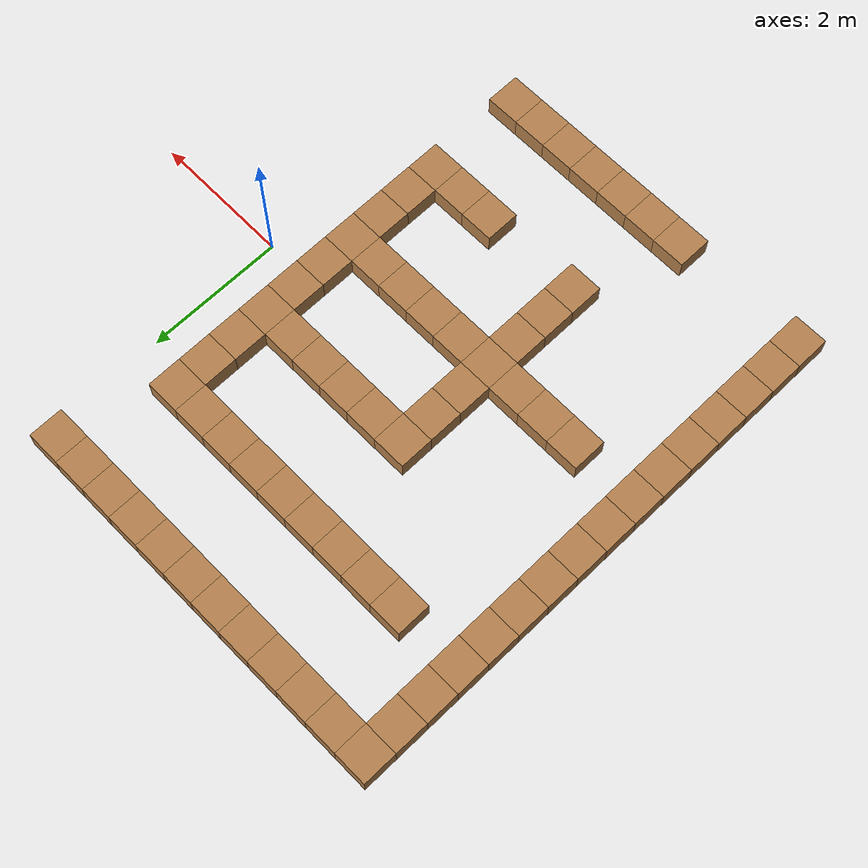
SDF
<sdf version="1.7">
 <world name="default">
  <model name="tile_0_0">
   <pose>-5.75 3.75 0.15 0 0 0</pose>
   <static>true</static>
   <link name="link">
    <collision name="col"><geometry><box><size>0.5 0.5 0.3</size></box></geometry></collision>
    <visual name="vis">
     <geometry><box><size>0.5 0.5 0.3</size></box></geometry>
     <material>
      <ambient>0.30 0.20 0.10 1</ambient>
      <diffuse>0.70 0.50 0.30 1</diffuse>
      <specular>0.10 0.10 0.10 1</specular>
     </material>
    </visual>
   </link>
  </model>
  <model name="tile_0_1">
   <pose>-5.25 3.75 0.15 0 0 0</pose>
   <static>true</static>
   <link name="link">
    <collision name="col"><geometry><box><size>0.5 0.5 0.3</size></box></geometry></collision>
    <visual name="vis">
     <geometry><box><size>0.5 0.5 0.3</size></box></geometry>
     <material>
      <ambient>0.30 0.20 0.10 1</ambient>
      <diffuse>0.70 0.50 0.30 1</diffuse>
      <specular>0.10 0.10 0.10 1</specular>
     </material>
    </visual>
   </link>
  </model>
  <model name="tile_0_2">
   <pose>-4.75 3.75 0.15 0 0 0</pose>
   <static>true</static>
   <link name="link">
    <collision name="col"><geometry><box><size>0.5 0.5 0.3</size></box></geometry></collision>
    <visual name="vis">
     <geometry><box><size>0.5 0.5 0.3</size></box></geometry>
     <material>
      <ambient>0.30 0.20 0.10 1</ambient>
      <diffuse>0.70 0.50 0.30 1</diffuse>
      <specular>0.10 0.10 0.10 1</specular>
     </material>
    </visual>
   </link>
  </model>
  <model name="tile_0_3">
   <pose>-4.25 3.75 0.15 0 0 0</pose>
   <static>true</static>
   <link name="link">
    <collision name="col"><geometry><box><size>0.5 0.5 0.3</size></box></geometry></collision>
    <visual name="vis">
     <geometry><box><size>0.5 0.5 0.3</size></box></geometry>
     <material>
      <ambient>0.30 0.20 0.10 1</ambient>
      <diffuse>0.70 0.50 0.30 1</diffuse>
      <specular>0.10 0.10 0.10 1</specular>
     </material>
    </visual>
   </link>
  </model>
  <model name="tile_0_4">
   <pose>-3.75 3.75 0.15 0 0 0</pose>
   <static>true</static>
   <link name="link">
    <collision name="col"><geometry><box><size>0.5 0.5 0.3</size></box></geometry></collision>
    <visual name="vis">
     <geometry><box><size>0.5 0.5 0.3</size></box></geometry>
     <material>
      <ambient>0.30 0.20 0.10 1</ambient>
      <diffuse>0.70 0.50 0.30 1</diffuse>
      <specular>0.10 0.10 0.10 1</specular>
     </material>
    </visual>
   </link>
  </model>
  <model name="tile_0_5">
   <pose>-3.25 3.75 0.15 0 0 0</pose>
   <static>true</static>
   <link name="link">
    <collision name="col"><geometry><box><size>0.5 0.5 0.3</size></box></geometry></collision>
    <visual name="vis">
     <geometry><box><size>0.5 0.5 0.3</size></box></geometry>
     <material>
      <ambient>0.30 0.20 0.10 1</ambient>
      <diffuse>0.70 0.50 0.30 1</diffuse>
      <specular>0.10 0.10 0.10 1</specular>
     </material>
    </visual>
   </link>
  </model>
  <model name="tile_0_6">
   <pose>-2.75 3.75 0.15 0 0 0</pose>
   <static>true</static>
   <link name="link">
    <collision name="col"><geometry><box><size>0.5 0.5 0.3</size></box></geometry></collision>
    <visual name="vis">
     <geometry><box><size>0.5 0.5 0.3</size></box></geometry>
     <material>
      <ambient>0.30 0.20 0.10 1</ambient>
      <diffuse>0.70 0.50 0.30 1</diffuse>
      <specular>0.10 0.10 0.10 1</specular>
     </material>
    </visual>
   </link>
  </model>
  <model name="tile_0_7">
   <pose>-2.25 3.75 0.15 0 0 0</pose>
   <static>true</static>
   <link name="link">
    <collision name="col"><geometry><box><size>0.5 0.5 0.3</size></box></geometry></collision>
    <visual name="vis">
     <geometry><box><size>0.5 0.5 0.3</size></box></geometry>
     <material>
      <ambient>0.30 0.20 0.10 1</ambient>
      <diffuse>0.70 0.50 0.30 1</diffuse>
      <specular>0.10 0.10 0.10 1</specular>
     </material>
    </visual>
   </link>
  </model>
  <model name="tile_0_8">
   <pose>-1.75 3.75 0.15 0 0 0</pose>
   <static>true</static>
   <link name="link">
    <collision name="col"><geometry><box><size>0.5 0.5 0.3</size></box></geometry></collision>
    <visual name="vis">
     <geometry><box><size>0.5 0.5 0.3</size></box></geometry>
     <material>
      <ambient>0.30 0.20 0.10 1</ambient>
      <diffuse>0.70 0.50 0.30 1</diffuse>
      <specular>0.10 0.10 0.10 1</specular>
     </material>
    </visual>
   </link>
  </model>
  <model name="tile_0_9">
   <pose>-1.25 3.75 0.15 0 0 0</pose>
   <static>true</static>
   <link name="link">
    <collision name="col"><geometry><box><size>0.5 0.5 0.3</size></box></geometry></collision>
    <visual name="vis">
     <geometry><box><size>0.5 0.5 0.3</size></box></geometry>
     <material>
      <ambient>0.30 0.20 0.10 1</ambient>
      <diffuse>0.70 0.50 0.30 1</diffuse>
      <specular>0.10 0.10 0.10 1</specular>
     </material>
    </visual>
   </link>
  </model>
  <model name="tile_0_10">
   <pose>-0.75 3.75 0.15 0 0 0</pose>
   <static>true</static>
   <link name="link">
    <collision name="col"><geometry><box><size>0.5 0.5 0.3</size></box></geometry></collision>
    <visual name="vis">
     <geometry><box><size>0.5 0.5 0.3</size></box></geometry>
     <material>
      <ambient>0.30 0.20 0.10 1</ambient>
      <diffuse>0.70 0.50 0.30 1</diffuse>
      <specular>0.10 0.10 0.10 1</specular>
     </material>
    </visual>
   </link>
  </model>
  <model name="tile_0_11">
   <pose>-0.25 3.75 0.15 0 0 0</pose>
   <static>true</static>
   <link name="link">
    <collision name="col"><geometry><box><size>0.5 0.5 0.3</size></box></geometry></collision>
    <visual name="vis">
     <geometry><box><size>0.5 0.5 0.3</size></box></geometry>
     <material>
      <ambient>0.30 0.20 0.10 1</ambient>
      <diffuse>0.70 0.50 0.30 1</diffuse>
      <specular>0.10 0.10 0.10 1</specular>
     </material>
    </visual>
   </link>
  </model>
  <model name="tile_1_0">
   <pose>-5.75 3.25 0.15 0 0 0</pose>
   <static>true</static>
   <link name="link">
    <collision name="col"><geometry><box><size>0.5 0.5 0.3</size></box></geometry></collision>
    <visual name="vis">
     <geometry><box><size>0.5 0.5 0.3</size></box></geometry>
     <material>
      <ambient>0.30 0.20 0.10 1</ambient>
      <diffuse>0.70 0.50 0.30 1</diffuse>
      <specular>0.10 0.10 0.10 1</specular>
     </material>
    </visual>
   </link>
  </model>
  <model name="tile_2_0">
   <pose>-5.75 2.75 0.15 0 0 0</pose>
   <static>true</static>
   <link name="link">
    <collision name="col"><geometry><box><size>0.5 0.5 0.3</size></box></geometry></collision>
    <visual name="vis">
     <geometry><box><size>0.5 0.5 0.3</size></box></geometry>
     <material>
      <ambient>0.30 0.20 0.10 1</ambient>
      <diffuse>0.70 0.50 0.30 1</diffuse>
      <specular>0.10 0.10 0.10 1</specular>
     </material>
    </visual>
   </link>
  </model>
  <model name="tile_3_0">
   <pose>-5.75 2.25 0.15 0 0 0</pose>
   <static>true</static>
   <link name="link">
    <collision name="col"><geometry><box><size>0.5 0.5 0.3</size></box></geometry></collision>
    <visual name="vis">
     <geometry><box><size>0.5 0.5 0.3</size></box></geometry>
     <material>
      <ambient>0.30 0.20 0.10 1</ambient>
      <diffuse>0.70 0.50 0.30 1</diffuse>
      <specular>0.10 0.10 0.10 1</specular>
     </material>
    </visual>
   </link>
  </model>
  <model name="tile_3_2">
   <pose>-4.75 2.25 0.15 0 0 0</pose>
   <static>true</static>
   <link name="link">
    <collision name="col"><geometry><box><size>0.5 0.5 0.3</size></box></geometry></collision>
    <visual name="vis">
     <geometry><box><size>0.5 0.5 0.3</size></box></geometry>
     <material>
      <ambient>0.30 0.20 0.10 1</ambient>
      <diffuse>0.70 0.50 0.30 1</diffuse>
      <specular>0.10 0.10 0.10 1</specular>
     </material>
    </visual>
   </link>
  </model>
  <model name="tile_3_3">
   <pose>-4.25 2.25 0.15 0 0 0</pose>
   <static>true</static>
   <link name="link">
    <collision name="col"><geometry><box><size>0.5 0.5 0.3</size></box></geometry></collision>
    <visual name="vis">
     <geometry><box><size>0.5 0.5 0.3</size></box></geometry>
     <material>
      <ambient>0.30 0.20 0.10 1</ambient>
      <diffuse>0.70 0.50 0.30 1</diffuse>
      <specular>0.10 0.10 0.10 1</specular>
     </material>
    </visual>
   </link>
  </model>
  <model name="tile_3_4">
   <pose>-3.75 2.25 0.15 0 0 0</pose>
   <static>true</static>
   <link name="link">
    <collision name="col"><geometry><box><size>0.5 0.5 0.3</size></box></geometry></collision>
    <visual name="vis">
     <geometry><box><size>0.5 0.5 0.3</size></box></geometry>
     <material>
      <ambient>0.30 0.20 0.10 1</ambient>
      <diffuse>0.70 0.50 0.30 1</diffuse>
      <specular>0.10 0.10 0.10 1</specular>
     </material>
    </visual>
   </link>
  </model>
  <model name="tile_3_5">
   <pose>-3.25 2.25 0.15 0 0 0</pose>
   <static>true</static>
   <link name="link">
    <collision name="col"><geometry><box><size>0.5 0.5 0.3</size></box></geometry></collision>
    <visual name="vis">
     <geometry><box><size>0.5 0.5 0.3</size></box></geometry>
     <material>
      <ambient>0.30 0.20 0.10 1</ambient>
      <diffuse>0.70 0.50 0.30 1</diffuse>
      <specular>0.10 0.10 0.10 1</specular>
     </material>
    </visual>
   </link>
  </model>
  <model name="tile_3_6">
   <pose>-2.75 2.25 0.15 0 0 0</pose>
   <static>true</static>
   <link name="link">
    <collision name="col"><geometry><box><size>0.5 0.5 0.3</size></box></geometry></collision>
    <visual name="vis">
     <geometry><box><size>0.5 0.5 0.3</size></box></geometry>
     <material>
      <ambient>0.30 0.20 0.10 1</ambient>
      <diffuse>0.70 0.50 0.30 1</diffuse>
      <specular>0.10 0.10 0.10 1</specular>
     </material>
    </visual>
   </link>
  </model>
  <model name="tile_3_7">
   <pose>-2.25 2.25 0.15 0 0 0</pose>
   <static>true</static>
   <link name="link">
    <collision name="col"><geometry><box><size>0.5 0.5 0.3</size></box></geometry></collision>
    <visual name="vis">
     <geometry><box><size>0.5 0.5 0.3</size></box></geometry>
     <material>
      <ambient>0.30 0.20 0.10 1</ambient>
      <diffuse>0.70 0.50 0.30 1</diffuse>
      <specular>0.10 0.10 0.10 1</specular>
     </material>
    </visual>
   </link>
  </model>
  <model name="tile_3_8">
   <pose>-1.75 2.25 0.15 0 0 0</pose>
   <static>true</static>
   <link name="link">
    <collision name="col"><geometry><box><size>0.5 0.5 0.3</size></box></geometry></collision>
    <visual name="vis">
     <geometry><box><size>0.5 0.5 0.3</size></box></geometry>
     <material>
      <ambient>0.30 0.20 0.10 1</ambient>
      <diffuse>0.70 0.50 0.30 1</diffuse>
      <specular>0.10 0.10 0.10 1</specular>
     </material>
    </visual>
   </link>
  </model>
  <model name="tile_3_9">
   <pose>-1.25 2.25 0.15 0 0 0</pose>
   <static>true</static>
   <link name="link">
    <collision name="col"><geometry><box><size>0.5 0.5 0.3</size></box></geometry></collision>
    <visual name="vis">
     <geometry><box><size>0.5 0.5 0.3</size></box></geometry>
     <material>
      <ambient>0.30 0.20 0.10 1</ambient>
      <diffuse>0.70 0.50 0.30 1</diffuse>
      <specular>0.10 0.10 0.10 1</specular>
     </material>
    </visual>
   </link>
  </model>
  <model name="tile_3_10">
   <pose>-0.75 2.25 0.15 0 0 0</pose>
   <static>true</static>
   <link name="link">
    <collision name="col"><geometry><box><size>0.5 0.5 0.3</size></box></geometry></collision>
    <visual name="vis">
     <geometry><box><size>0.5 0.5 0.3</size></box></geometry>
     <material>
      <ambient>0.30 0.20 0.10 1</ambient>
      <diffuse>0.70 0.50 0.30 1</diffuse>
      <specular>0.10 0.10 0.10 1</specular>
     </material>
    </visual>
   </link>
  </model>
  <model name="tile_4_0">
   <pose>-5.75 1.75 0.15 0 0 0</pose>
   <static>true</static>
   <link name="link">
    <collision name="col"><geometry><box><size>0.5 0.5 0.3</size></box></geometry></collision>
    <visual name="vis">
     <geometry><box><size>0.5 0.5 0.3</size></box></geometry>
     <material>
      <ambient>0.30 0.20 0.10 1</ambient>
      <diffuse>0.70 0.50 0.30 1</diffuse>
      <specular>0.10 0.10 0.10 1</specular>
     </material>
    </visual>
   </link>
  </model>
  <model name="tile_4_10">
   <pose>-0.75 1.75 0.15 0 0 0</pose>
   <static>true</static>
   <link name="link">
    <collision name="col"><geometry><box><size>0.5 0.5 0.3</size></box></geometry></collision>
    <visual name="vis">
     <geometry><box><size>0.5 0.5 0.3</size></box></geometry>
     <material>
      <ambient>0.30 0.20 0.10 1</ambient>
      <diffuse>0.70 0.50 0.30 1</diffuse>
      <specular>0.10 0.10 0.10 1</specular>
     </material>
    </visual>
   </link>
  </model>
  <model name="tile_5_0">
   <pose>-5.75 1.25 0.15 0 0 0</pose>
   <static>true</static>
   <link name="link">
    <collision name="col"><geometry><box><size>0.5 0.5 0.3</size></box></geometry></collision>
    <visual name="vis">
     <geometry><box><size>0.5 0.5 0.3</size></box></geometry>
     <material>
      <ambient>0.30 0.20 0.10 1</ambient>
      <diffuse>0.70 0.50 0.30 1</diffuse>
      <specular>0.10 0.10 0.10 1</specular>
     </material>
    </visual>
   </link>
  </model>
  <model name="tile_5_10">
   <pose>-0.75 1.25 0.15 0 0 0</pose>
   <static>true</static>
   <link name="link">
    <collision name="col"><geometry><box><size>0.5 0.5 0.3</size></box></geometry></collision>
    <visual name="vis">
     <geometry><box><size>0.5 0.5 0.3</size></box></geometry>
     <material>
      <ambient>0.30 0.20 0.10 1</ambient>
      <diffuse>0.70 0.50 0.30 1</diffuse>
      <specular>0.10 0.10 0.10 1</specular>
     </material>
    </visual>
   </link>
  </model>
  <model name="tile_6_0">
   <pose>-5.75 0.75 0.15 0 0 0</pose>
   <static>true</static>
   <link name="link">
    <collision name="col"><geometry><box><size>0.5 0.5 0.3</size></box></geometry></collision>
    <visual name="vis">
     <geometry><box><size>0.5 0.5 0.3</size></box></geometry>
     <material>
      <ambient>0.30 0.20 0.10 1</ambient>
      <diffuse>0.70 0.50 0.30 1</diffuse>
      <specular>0.10 0.10 0.10 1</specular>
     </material>
    </visual>
   </link>
  </model>
  <model name="tile_6_5">
   <pose>-3.25 0.75 0.15 0 0 0</pose>
   <static>true</static>
   <link name="link">
    <collision name="col"><geometry><box><size>0.5 0.5 0.3</size></box></geometry></collision>
    <visual name="vis">
     <geometry><box><size>0.5 0.5 0.3</size></box></geometry>
     <material>
      <ambient>0.30 0.20 0.10 1</ambient>
      <diffuse>0.70 0.50 0.30 1</diffuse>
      <specular>0.10 0.10 0.10 1</specular>
     </material>
    </visual>
   </link>
  </model>
  <model name="tile_6_6">
   <pose>-2.75 0.75 0.15 0 0 0</pose>
   <static>true</static>
   <link name="link">
    <collision name="col"><geometry><box><size>0.5 0.5 0.3</size></box></geometry></collision>
    <visual name="vis">
     <geometry><box><size>0.5 0.5 0.3</size></box></geometry>
     <material>
      <ambient>0.30 0.20 0.10 1</ambient>
      <diffuse>0.70 0.50 0.30 1</diffuse>
      <specular>0.10 0.10 0.10 1</specular>
     </material>
    </visual>
   </link>
  </model>
  <model name="tile_6_7">
   <pose>-2.25 0.75 0.15 0 0 0</pose>
   <static>true</static>
   <link name="link">
    <collision name="col"><geometry><box><size>0.5 0.5 0.3</size></box></geometry></collision>
    <visual name="vis">
     <geometry><box><size>0.5 0.5 0.3</size></box></geometry>
     <material>
      <ambient>0.30 0.20 0.10 1</ambient>
      <diffuse>0.70 0.50 0.30 1</diffuse>
      <specular>0.10 0.10 0.10 1</specular>
     </material>
    </visual>
   </link>
  </model>
  <model name="tile_6_8">
   <pose>-1.75 0.75 0.15 0 0 0</pose>
   <static>true</static>
   <link name="link">
    <collision name="col"><geometry><box><size>0.5 0.5 0.3</size></box></geometry></collision>
    <visual name="vis">
     <geometry><box><size>0.5 0.5 0.3</size></box></geometry>
     <material>
      <ambient>0.30 0.20 0.10 1</ambient>
      <diffuse>0.70 0.50 0.30 1</diffuse>
      <specular>0.10 0.10 0.10 1</specular>
     </material>
    </visual>
   </link>
  </model>
  <model name="tile_6_9">
   <pose>-1.25 0.75 0.15 0 0 0</pose>
   <static>true</static>
   <link name="link">
    <collision name="col"><geometry><box><size>0.5 0.5 0.3</size></box></geometry></collision>
    <visual name="vis">
     <geometry><box><size>0.5 0.5 0.3</size></box></geometry>
     <material>
      <ambient>0.30 0.20 0.10 1</ambient>
      <diffuse>0.70 0.50 0.30 1</diffuse>
      <specular>0.10 0.10 0.10 1</specular>
     </material>
    </visual>
   </link>
  </model>
  <model name="tile_6_10">
   <pose>-0.75 0.75 0.15 0 0 0</pose>
   <static>true</static>
   <link name="link">
    <collision name="col"><geometry><box><size>0.5 0.5 0.3</size></box></geometry></collision>
    <visual name="vis">
     <geometry><box><size>0.5 0.5 0.3</size></box></geometry>
     <material>
      <ambient>0.30 0.20 0.10 1</ambient>
      <diffuse>0.70 0.50 0.30 1</diffuse>
      <specular>0.10 0.10 0.10 1</specular>
     </material>
    </visual>
   </link>
  </model>
  <model name="tile_7_0">
   <pose>-5.75 0.25 0.15 0 0 0</pose>
   <static>true</static>
   <link name="link">
    <collision name="col"><geometry><box><size>0.5 0.5 0.3</size></box></geometry></collision>
    <visual name="vis">
     <geometry><box><size>0.5 0.5 0.3</size></box></geometry>
     <material>
      <ambient>0.30 0.20 0.10 1</ambient>
      <diffuse>0.70 0.50 0.30 1</diffuse>
      <specular>0.10 0.10 0.10 1</specular>
     </material>
    </visual>
   </link>
  </model>
  <model name="tile_7_5">
   <pose>-3.25 0.25 0.15 0 0 0</pose>
   <static>true</static>
   <link name="link">
    <collision name="col"><geometry><box><size>0.5 0.5 0.3</size></box></geometry></collision>
    <visual name="vis">
     <geometry><box><size>0.5 0.5 0.3</size></box></geometry>
     <material>
      <ambient>0.30 0.20 0.10 1</ambient>
      <diffuse>0.70 0.50 0.30 1</diffuse>
      <specular>0.10 0.10 0.10 1</specular>
     </material>
    </visual>
   </link>
  </model>
  <model name="tile_7_10">
   <pose>-0.75 0.25 0.15 0 0 0</pose>
   <static>true</static>
   <link name="link">
    <collision name="col"><geometry><box><size>0.5 0.5 0.3</size></box></geometry></collision>
    <visual name="vis">
     <geometry><box><size>0.5 0.5 0.3</size></box></geometry>
     <material>
      <ambient>0.30 0.20 0.10 1</ambient>
      <diffuse>0.70 0.50 0.30 1</diffuse>
      <specular>0.10 0.10 0.10 1</specular>
     </material>
    </visual>
   </link>
  </model>
  <model name="tile_8_0">
   <pose>-5.75 -0.25 0.15 0 0 0</pose>
   <static>true</static>
   <link name="link">
    <collision name="col"><geometry><box><size>0.5 0.5 0.3</size></box></geometry></collision>
    <visual name="vis">
     <geometry><box><size>0.5 0.5 0.3</size></box></geometry>
     <material>
      <ambient>0.30 0.20 0.10 1</ambient>
      <diffuse>0.70 0.50 0.30 1</diffuse>
      <specular>0.10 0.10 0.10 1</specular>
     </material>
    </visual>
   </link>
  </model>
  <model name="tile_8_5">
   <pose>-3.25 -0.25 0.15 0 0 0</pose>
   <static>true</static>
   <link name="link">
    <collision name="col"><geometry><box><size>0.5 0.5 0.3</size></box></geometry></collision>
    <visual name="vis">
     <geometry><box><size>0.5 0.5 0.3</size></box></geometry>
     <material>
      <ambient>0.30 0.20 0.10 1</ambient>
      <diffuse>0.70 0.50 0.30 1</diffuse>
      <specular>0.10 0.10 0.10 1</specular>
     </material>
    </visual>
   </link>
  </model>
  <model name="tile_8_10">
   <pose>-0.75 -0.25 0.15 0 0 0</pose>
   <static>true</static>
   <link name="link">
    <collision name="col"><geometry><box><size>0.5 0.5 0.3</size></box></geometry></collision>
    <visual name="vis">
     <geometry><box><size>0.5 0.5 0.3</size></box></geometry>
     <material>
      <ambient>0.30 0.20 0.10 1</ambient>
      <diffuse>0.70 0.50 0.30 1</diffuse>
      <specular>0.10 0.10 0.10 1</specular>
     </material>
    </visual>
   </link>
  </model>
  <model name="tile_9_0">
   <pose>-5.75 -0.75 0.15 0 0 0</pose>
   <static>true</static>
   <link name="link">
    <collision name="col"><geometry><box><size>0.5 0.5 0.3</size></box></geometry></collision>
    <visual name="vis">
     <geometry><box><size>0.5 0.5 0.3</size></box></geometry>
     <material>
      <ambient>0.30 0.20 0.10 1</ambient>
      <diffuse>0.70 0.50 0.30 1</diffuse>
      <specular>0.10 0.10 0.10 1</specular>
     </material>
    </visual>
   </link>
  </model>
  <model name="tile_9_2">
   <pose>-4.75 -0.75 0.15 0 0 0</pose>
   <static>true</static>
   <link name="link">
    <collision name="col"><geometry><box><size>0.5 0.5 0.3</size></box></geometry></collision>
    <visual name="vis">
     <geometry><box><size>0.5 0.5 0.3</size></box></geometry>
     <material>
      <ambient>0.30 0.20 0.10 1</ambient>
      <diffuse>0.70 0.50 0.30 1</diffuse>
      <specular>0.10 0.10 0.10 1</specular>
     </material>
    </visual>
   </link>
  </model>
  <model name="tile_9_3">
   <pose>-4.25 -0.75 0.15 0 0 0</pose>
   <static>true</static>
   <link name="link">
    <collision name="col"><geometry><box><size>0.5 0.5 0.3</size></box></geometry></collision>
    <visual name="vis">
     <geometry><box><size>0.5 0.5 0.3</size></box></geometry>
     <material>
      <ambient>0.30 0.20 0.10 1</ambient>
      <diffuse>0.70 0.50 0.30 1</diffuse>
      <specular>0.10 0.10 0.10 1</specular>
     </material>
    </visual>
   </link>
  </model>
  <model name="tile_9_4">
   <pose>-3.75 -0.75 0.15 0 0 0</pose>
   <static>true</static>
   <link name="link">
    <collision name="col"><geometry><box><size>0.5 0.5 0.3</size></box></geometry></collision>
    <visual name="vis">
     <geometry><box><size>0.5 0.5 0.3</size></box></geometry>
     <material>
      <ambient>0.30 0.20 0.10 1</ambient>
      <diffuse>0.70 0.50 0.30 1</diffuse>
      <specular>0.10 0.10 0.10 1</specular>
     </material>
    </visual>
   </link>
  </model>
  <model name="tile_9_5">
   <pose>-3.25 -0.75 0.15 0 0 0</pose>
   <static>true</static>
   <link name="link">
    <collision name="col"><geometry><box><size>0.5 0.5 0.3</size></box></geometry></collision>
    <visual name="vis">
     <geometry><box><size>0.5 0.5 0.3</size></box></geometry>
     <material>
      <ambient>0.30 0.20 0.10 1</ambient>
      <diffuse>0.70 0.50 0.30 1</diffuse>
      <specular>0.10 0.10 0.10 1</specular>
     </material>
    </visual>
   </link>
  </model>
  <model name="tile_9_6">
   <pose>-2.75 -0.75 0.15 0 0 0</pose>
   <static>true</static>
   <link name="link">
    <collision name="col"><geometry><box><size>0.5 0.5 0.3</size></box></geometry></collision>
    <visual name="vis">
     <geometry><box><size>0.5 0.5 0.3</size></box></geometry>
     <material>
      <ambient>0.30 0.20 0.10 1</ambient>
      <diffuse>0.70 0.50 0.30 1</diffuse>
      <specular>0.10 0.10 0.10 1</specular>
     </material>
    </visual>
   </link>
  </model>
  <model name="tile_9_7">
   <pose>-2.25 -0.75 0.15 0 0 0</pose>
   <static>true</static>
   <link name="link">
    <collision name="col"><geometry><box><size>0.5 0.5 0.3</size></box></geometry></collision>
    <visual name="vis">
     <geometry><box><size>0.5 0.5 0.3</size></box></geometry>
     <material>
      <ambient>0.30 0.20 0.10 1</ambient>
      <diffuse>0.70 0.50 0.30 1</diffuse>
      <specular>0.10 0.10 0.10 1</specular>
     </material>
    </visual>
   </link>
  </model>
  <model name="tile_9_8">
   <pose>-1.75 -0.75 0.15 0 0 0</pose>
   <static>true</static>
   <link name="link">
    <collision name="col"><geometry><box><size>0.5 0.5 0.3</size></box></geometry></collision>
    <visual name="vis">
     <geometry><box><size>0.5 0.5 0.3</size></box></geometry>
     <material>
      <ambient>0.30 0.20 0.10 1</ambient>
      <diffuse>0.70 0.50 0.30 1</diffuse>
      <specular>0.10 0.10 0.10 1</specular>
     </material>
    </visual>
   </link>
  </model>
  <model name="tile_9_9">
   <pose>-1.25 -0.75 0.15 0 0 0</pose>
   <static>true</static>
   <link name="link">
    <collision name="col"><geometry><box><size>0.5 0.5 0.3</size></box></geometry></collision>
    <visual name="vis">
     <geometry><box><size>0.5 0.5 0.3</size></box></geometry>
     <material>
      <ambient>0.30 0.20 0.10 1</ambient>
      <diffuse>0.70 0.50 0.30 1</diffuse>
      <specular>0.10 0.10 0.10 1</specular>
     </material>
    </visual>
   </link>
  </model>
  <model name="tile_9_10">
   <pose>-0.75 -0.75 0.15 0 0 0</pose>
   <static>true</static>
   <link name="link">
    <collision name="col"><geometry><box><size>0.5 0.5 0.3</size></box></geometry></collision>
    <visual name="vis">
     <geometry><box><size>0.5 0.5 0.3</size></box></geometry>
     <material>
      <ambient>0.30 0.20 0.10 1</ambient>
      <diffuse>0.70 0.50 0.30 1</diffuse>
      <specular>0.10 0.10 0.10 1</specular>
     </material>
    </visual>
   </link>
  </model>
  <model name="tile_10_0">
   <pose>-5.75 -1.25 0.15 0 0 0</pose>
   <static>true</static>
   <link name="link">
    <collision name="col"><geometry><box><size>0.5 0.5 0.3</size></box></geometry></collision>
    <visual name="vis">
     <geometry><box><size>0.5 0.5 0.3</size></box></geometry>
     <material>
      <ambient>0.30 0.20 0.10 1</ambient>
      <diffuse>0.70 0.50 0.30 1</diffuse>
      <specular>0.10 0.10 0.10 1</specular>
     </material>
    </visual>
   </link>
  </model>
  <model name="tile_10_5">
   <pose>-3.25 -1.25 0.15 0 0 0</pose>
   <static>true</static>
   <link name="link">
    <collision name="col"><geometry><box><size>0.5 0.5 0.3</size></box></geometry></collision>
    <visual name="vis">
     <geometry><box><size>0.5 0.5 0.3</size></box></geometry>
     <material>
      <ambient>0.30 0.20 0.10 1</ambient>
      <diffuse>0.70 0.50 0.30 1</diffuse>
      <specular>0.10 0.10 0.10 1</specular>
     </material>
    </visual>
   </link>
  </model>
  <model name="tile_10_10">
   <pose>-0.75 -1.25 0.15 0 0 0</pose>
   <static>true</static>
   <link name="link">
    <collision name="col"><geometry><box><size>0.5 0.5 0.3</size></box></geometry></collision>
    <visual name="vis">
     <geometry><box><size>0.5 0.5 0.3</size></box></geometry>
     <material>
      <ambient>0.30 0.20 0.10 1</ambient>
      <diffuse>0.70 0.50 0.30 1</diffuse>
      <specular>0.10 0.10 0.10 1</specular>
     </material>
    </visual>
   </link>
  </model>
  <model name="tile_11_0">
   <pose>-5.75 -1.75 0.15 0 0 0</pose>
   <static>true</static>
   <link name="link">
    <collision name="col"><geometry><box><size>0.5 0.5 0.3</size></box></geometry></collision>
    <visual name="vis">
     <geometry><box><size>0.5 0.5 0.3</size></box></geometry>
     <material>
      <ambient>0.30 0.20 0.10 1</ambient>
      <diffuse>0.70 0.50 0.30 1</diffuse>
      <specular>0.10 0.10 0.10 1</specular>
     </material>
    </visual>
   </link>
  </model>
  <model name="tile_11_5">
   <pose>-3.25 -1.75 0.15 0 0 0</pose>
   <static>true</static>
   <link name="link">
    <collision name="col"><geometry><box><size>0.5 0.5 0.3</size></box></geometry></collision>
    <visual name="vis">
     <geometry><box><size>0.5 0.5 0.3</size></box></geometry>
     <material>
      <ambient>0.30 0.20 0.10 1</ambient>
      <diffuse>0.70 0.50 0.30 1</diffuse>
      <specular>0.10 0.10 0.10 1</specular>
     </material>
    </visual>
   </link>
  </model>
  <model name="tile_11_10">
   <pose>-0.75 -1.75 0.15 0 0 0</pose>
   <static>true</static>
   <link name="link">
    <collision name="col"><geometry><box><size>0.5 0.5 0.3</size></box></geometry></collision>
    <visual name="vis">
     <geometry><box><size>0.5 0.5 0.3</size></box></geometry>
     <material>
      <ambient>0.30 0.20 0.10 1</ambient>
      <diffuse>0.70 0.50 0.30 1</diffuse>
      <specular>0.10 0.10 0.10 1</specular>
     </material>
    </visual>
   </link>
  </model>
  <model name="tile_12_0">
   <pose>-5.75 -2.25 0.15 0 0 0</pose>
   <static>true</static>
   <link name="link">
    <collision name="col"><geometry><box><size>0.5 0.5 0.3</size></box></geometry></collision>
    <visual name="vis">
     <geometry><box><size>0.5 0.5 0.3</size></box></geometry>
     <material>
      <ambient>0.30 0.20 0.10 1</ambient>
      <diffuse>0.70 0.50 0.30 1</diffuse>
      <specular>0.10 0.10 0.10 1</specular>
     </material>
    </visual>
   </link>
  </model>
  <model name="tile_12_5">
   <pose>-3.25 -2.25 0.15 0 0 0</pose>
   <static>true</static>
   <link name="link">
    <collision name="col"><geometry><box><size>0.5 0.5 0.3</size></box></geometry></collision>
    <visual name="vis">
     <geometry><box><size>0.5 0.5 0.3</size></box></geometry>
     <material>
      <ambient>0.30 0.20 0.10 1</ambient>
      <diffuse>0.70 0.50 0.30 1</diffuse>
      <specular>0.10 0.10 0.10 1</specular>
     </material>
    </visual>
   </link>
  </model>
  <model name="tile_12_8">
   <pose>-1.75 -2.25 0.15 0 0 0</pose>
   <static>true</static>
   <link name="link">
    <collision name="col"><geometry><box><size>0.5 0.5 0.3</size></box></geometry></collision>
    <visual name="vis">
     <geometry><box><size>0.5 0.5 0.3</size></box></geometry>
     <material>
      <ambient>0.30 0.20 0.10 1</ambient>
      <diffuse>0.70 0.50 0.30 1</diffuse>
      <specular>0.10 0.10 0.10 1</specular>
     </material>
    </visual>
   </link>
  </model>
  <model name="tile_12_9">
   <pose>-1.25 -2.25 0.15 0 0 0</pose>
   <static>true</static>
   <link name="link">
    <collision name="col"><geometry><box><size>0.5 0.5 0.3</size></box></geometry></collision>
    <visual name="vis">
     <geometry><box><size>0.5 0.5 0.3</size></box></geometry>
     <material>
      <ambient>0.30 0.20 0.10 1</ambient>
      <diffuse>0.70 0.50 0.30 1</diffuse>
      <specular>0.10 0.10 0.10 1</specular>
     </material>
    </visual>
   </link>
  </model>
  <model name="tile_12_10">
   <pose>-0.75 -2.25 0.15 0 0 0</pose>
   <static>true</static>
   <link name="link">
    <collision name="col"><geometry><box><size>0.5 0.5 0.3</size></box></geometry></collision>
    <visual name="vis">
     <geometry><box><size>0.5 0.5 0.3</size></box></geometry>
     <material>
      <ambient>0.30 0.20 0.10 1</ambient>
      <diffuse>0.70 0.50 0.30 1</diffuse>
      <specular>0.10 0.10 0.10 1</specular>
     </material>
    </visual>
   </link>
  </model>
  <model name="tile_13_0">
   <pose>-5.75 -2.75 0.15 0 0 0</pose>
   <static>true</static>
   <link name="link">
    <collision name="col"><geometry><box><size>0.5 0.5 0.3</size></box></geometry></collision>
    <visual name="vis">
     <geometry><box><size>0.5 0.5 0.3</size></box></geometry>
     <material>
      <ambient>0.30 0.20 0.10 1</ambient>
      <diffuse>0.70 0.50 0.30 1</diffuse>
      <specular>0.10 0.10 0.10 1</specular>
     </material>
    </visual>
   </link>
  </model>
  <model name="tile_14_0">
   <pose>-5.75 -3.25 0.15 0 0 0</pose>
   <static>true</static>
   <link name="link">
    <collision name="col"><geometry><box><size>0.5 0.5 0.3</size></box></geometry></collision>
    <visual name="vis">
     <geometry><box><size>0.5 0.5 0.3</size></box></geometry>
     <material>
      <ambient>0.30 0.20 0.10 1</ambient>
      <diffuse>0.70 0.50 0.30 1</diffuse>
      <specular>0.10 0.10 0.10 1</specular>
     </material>
    </visual>
   </link>
  </model>
  <model name="tile_15_0">
   <pose>-5.75 -3.75 0.15 0 0 0</pose>
   <static>true</static>
   <link name="link">
    <collision name="col"><geometry><box><size>0.5 0.5 0.3</size></box></geometry></collision>
    <visual name="vis">
     <geometry><box><size>0.5 0.5 0.3</size></box></geometry>
     <material>
      <ambient>0.30 0.20 0.10 1</ambient>
      <diffuse>0.70 0.50 0.30 1</diffuse>
      <specular>0.10 0.10 0.10 1</specular>
     </material>
    </visual>
   </link>
  </model>
  <model name="tile_15_4">
   <pose>-3.75 -3.75 0.15 0 0 0</pose>
   <static>true</static>
   <link name="link">
    <collision name="col"><geometry><box><size>0.5 0.5 0.3</size></box></geometry></collision>
    <visual name="vis">
     <geometry><box><size>0.5 0.5 0.3</size></box></geometry>
     <material>
      <ambient>0.30 0.20 0.10 1</ambient>
      <diffuse>0.70 0.50 0.30 1</diffuse>
      <specular>0.10 0.10 0.10 1</specular>
     </material>
    </visual>
   </link>
  </model>
  <model name="tile_15_5">
   <pose>-3.25 -3.75 0.15 0 0 0</pose>
   <static>true</static>
   <link name="link">
    <collision name="col"><geometry><box><size>0.5 0.5 0.3</size></box></geometry></collision>
    <visual name="vis">
     <geometry><box><size>0.5 0.5 0.3</size></box></geometry>
     <material>
      <ambient>0.30 0.20 0.10 1</ambient>
      <diffuse>0.70 0.50 0.30 1</diffuse>
      <specular>0.10 0.10 0.10 1</specular>
     </material>
    </visual>
   </link>
  </model>
  <model name="tile_15_6">
   <pose>-2.75 -3.75 0.15 0 0 0</pose>
   <static>true</static>
   <link name="link">
    <collision name="col"><geometry><box><size>0.5 0.5 0.3</size></box></geometry></collision>
    <visual name="vis">
     <geometry><box><size>0.5 0.5 0.3</size></box></geometry>
     <material>
      <ambient>0.30 0.20 0.10 1</ambient>
      <diffuse>0.70 0.50 0.30 1</diffuse>
      <specular>0.10 0.10 0.10 1</specular>
     </material>
    </visual>
   </link>
  </model>
  <model name="tile_15_7">
   <pose>-2.25 -3.75 0.15 0 0 0</pose>
   <static>true</static>
   <link name="link">
    <collision name="col"><geometry><box><size>0.5 0.5 0.3</size></box></geometry></collision>
    <visual name="vis">
     <geometry><box><size>0.5 0.5 0.3</size></box></geometry>
     <material>
      <ambient>0.30 0.20 0.10 1</ambient>
      <diffuse>0.70 0.50 0.30 1</diffuse>
      <specular>0.10 0.10 0.10 1</specular>
     </material>
    </visual>
   </link>
  </model>
  <model name="tile_15_8">
   <pose>-1.75 -3.75 0.15 0 0 0</pose>
   <static>true</static>
   <link name="link">
    <collision name="col"><geometry><box><size>0.5 0.5 0.3</size></box></geometry></collision>
    <visual name="vis">
     <geometry><box><size>0.5 0.5 0.3</size></box></geometry>
     <material>
      <ambient>0.30 0.20 0.10 1</ambient>
      <diffuse>0.70 0.50 0.30 1</diffuse>
      <specular>0.10 0.10 0.10 1</specular>
     </material>
    </visual>
   </link>
  </model>
  <model name="tile_15_9">
   <pose>-1.25 -3.75 0.15 0 0 0</pose>
   <static>true</static>
   <link name="link">
    <collision name="col"><geometry><box><size>0.5 0.5 0.3</size></box></geometry></collision>
    <visual name="vis">
     <geometry><box><size>0.5 0.5 0.3</size></box></geometry>
     <material>
      <ambient>0.30 0.20 0.10 1</ambient>
      <diffuse>0.70 0.50 0.30 1</diffuse>
      <specular>0.10 0.10 0.10 1</specular>
     </material>
    </visual>
   </link>
  </model>
  <model name="tile_15_10">
   <pose>-0.75 -3.75 0.15 0 0 0</pose>
   <static>true</static>
   <link name="link">
    <collision name="col"><geometry><box><size>0.5 0.5 0.3</size></box></geometry></collision>
    <visual name="vis">
     <geometry><box><size>0.5 0.5 0.3</size></box></geometry>
     <material>
      <ambient>0.30 0.20 0.10 1</ambient>
      <diffuse>0.70 0.50 0.30 1</diffuse>
      <specular>0.10 0.10 0.10 1</specular>
     </material>
    </visual>
   </link>
  </model>
 </world>
</sdf>
